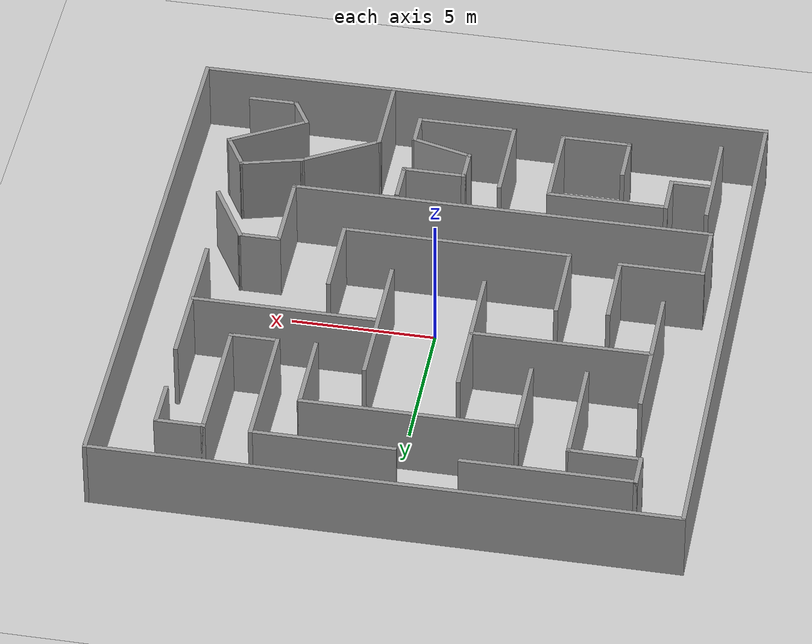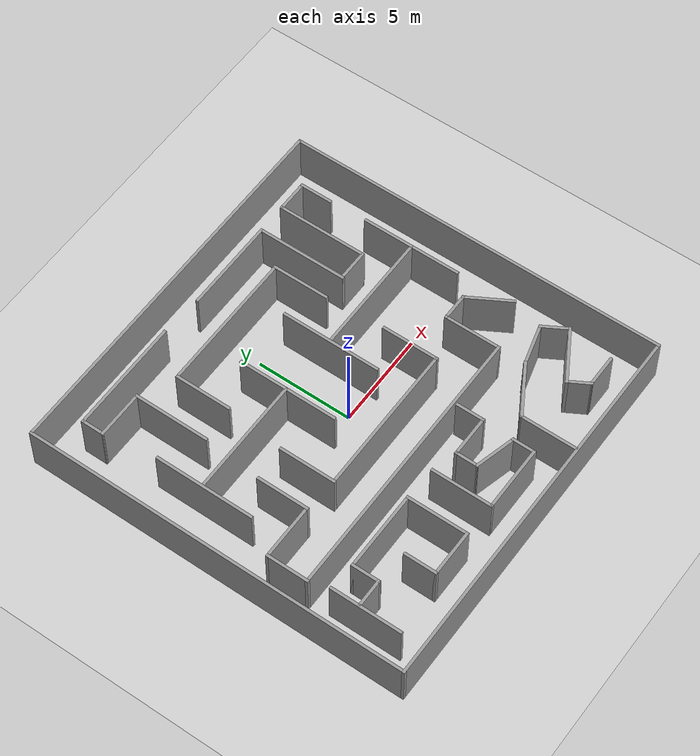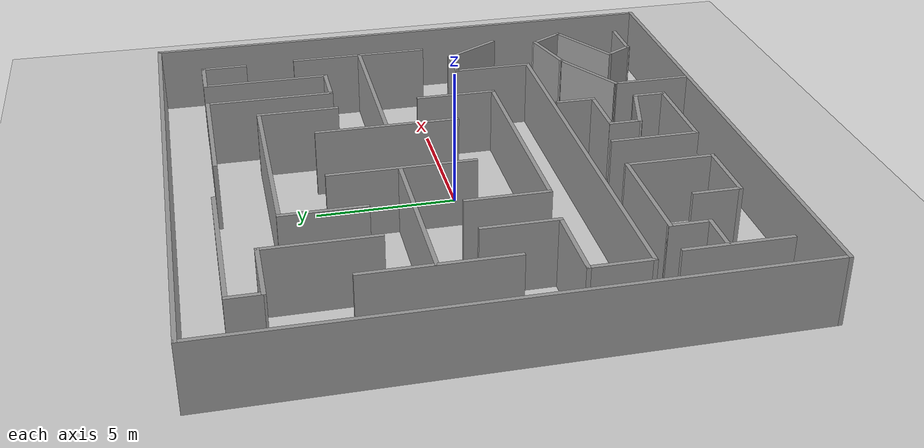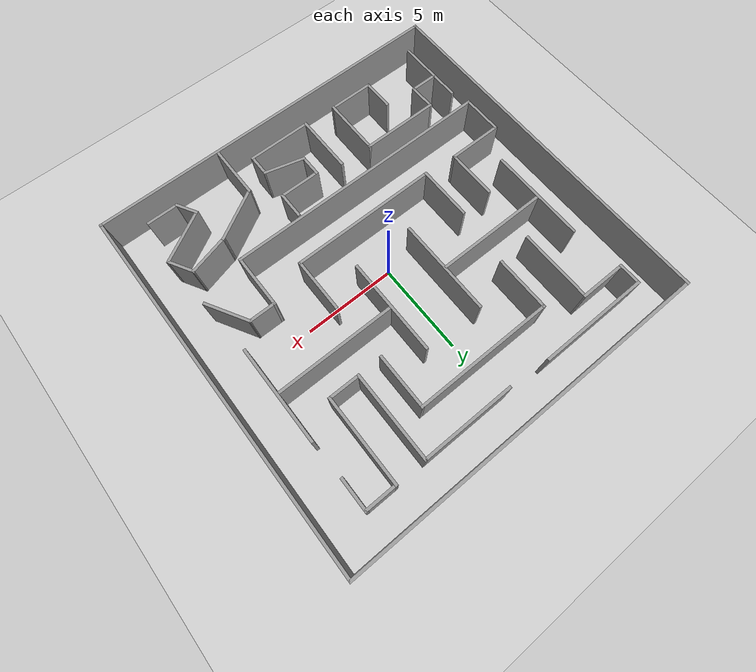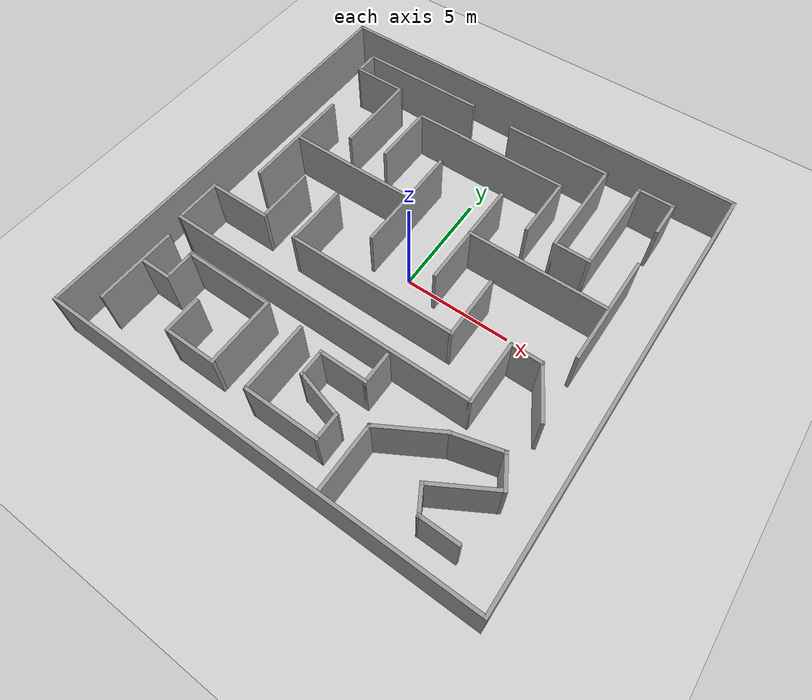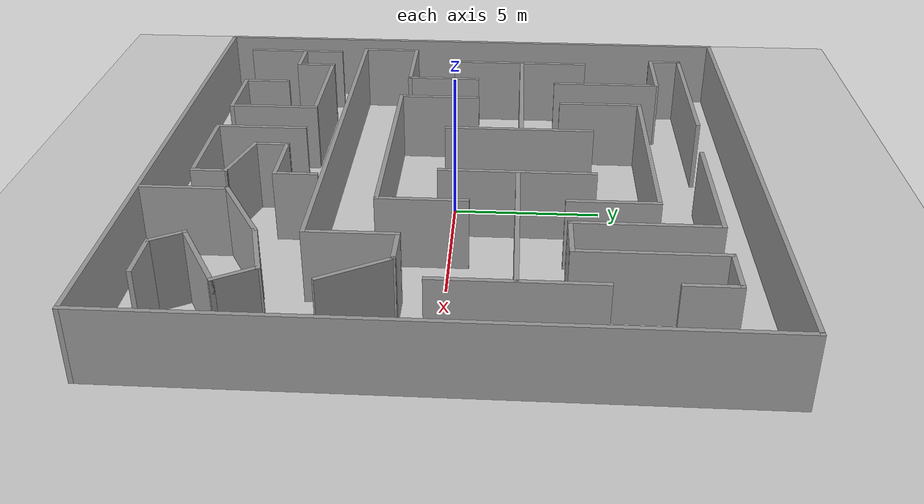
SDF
<sdf version="1.6">
 <world name="default">
  <light name="sun" type="directional">
   <pose>0 0 10 0 -0 0</pose>
   <diffuse>0.8 0.8 0.8 1</diffuse>
   <specular>0.1 0.1 0.1 1</specular>
   <attenuation>
    <range>1000</range>
    <constant>0.9</constant>
    <linear>0.01</linear>
    <quadratic>0.001</quadratic>
   </attenuation>
   <direction>-0.5 0.5 -1</direction>
  </light>
  <model name="ground_plane">
   <static>1</static>
   <link name="link">
    <collision name="collision">
     <geometry><plane><normal>0 0 1</normal><size>100 100</size></plane></geometry>
     <surface><friction><ode><mu>100</mu><mu2>50</mu2></ode></friction></surface>
    </collision>
    <visual name="visual">
     <cast_shadows>0</cast_shadows>
     <geometry><plane><normal>0 0 1</normal><size>100 100</size></plane></geometry>
     <material>
      <script><uri>file://media/materials/scripts/gazebo.material</uri><name>Gazebo/Grey</name></script>
     </material>
    </visual>
   </link>
  </model>
  <gravity>0 0 -9.8</gravity>
  <magnetic_field>6e-06 2.3e-05 -4.2e-05</magnetic_field>
  <atmosphere type="adiabatic"/>
  <physics name="default_physics" default="0" type="ode">
   <max_step_size>0.001</max_step_size>
   <real_time_factor>1</real_time_factor>
   <real_time_update_rate>1000</real_time_update_rate>
  </physics>
  <scene><ambient>0.4 0.4 0.4 1</ambient><background>0.7 0.7 0.7 1</background><shadows>1</shadows></scene>
  <spherical_coordinates>
   <surface_model>EARTH_WGS84</surface_model>
   <latitude_deg>0</latitude_deg>
   <longitude_deg>0</longitude_deg>
   <elevation>0</elevation>
   <heading_deg>0</heading_deg>
  </spherical_coordinates>
  <model name="pp_test_3">
   <link name="Wall_0">
    <collision name="Wall_0_Collision">
     <geometry><box><size>20.15 0.15 2.5</size></box></geometry>
     <pose>0 0 1.25 0 -0 0</pose>
    </collision>
    <visual name="Wall_0_Visual">
     <pose>0 0 1.25 0 -0 0</pose>
     <geometry><box><size>20.15 0.15 2.5</size></box></geometry>
     <material>
      <script><uri>file://media/materials/scripts/gazebo.material</uri><name>Gazebo/Grey</name></script>
      <ambient>1 1 1 1</ambient>
     </material>
    </visual>
    <pose>0 10 0 0 -0 0</pose>
   </link>
   <link name="Wall_10">
    <collision name="Wall_10_Collision">
     <geometry><box><size>6.25 0.15 2.5</size></box></geometry>
     <pose>0 0 1.25 0 -0 0</pose>
    </collision>
    <visual name="Wall_10_Visual">
     <pose>0 0 1.25 0 -0 0</pose>
     <geometry><box><size>6.25 0.15 2.5</size></box></geometry>
     <material>
      <script><uri>file://media/materials/scripts/gazebo.material</uri><name>Gazebo/Grey</name></script>
      <ambient>1 1 1 1</ambient>
     </material>
    </visual>
    <pose>-4.70173 2.24343 0 0 -0 0</pose>
   </link>
   <link name="Wall_12">
    <collision name="Wall_12_Collision">
     <geometry><box><size>5.25 0.15 2.5</size></box></geometry>
     <pose>0 0 1.25 0 -0 0</pose>
    </collision>
    <visual name="Wall_12_Visual">
     <pose>0 0 1.25 0 -0 0</pose>
     <geometry><box><size>5.25 0.15 2.5</size></box></geometry>
     <material>
      <script><uri>file://media/materials/scripts/gazebo.material</uri><name>Gazebo/Grey</name></script>
      <ambient>1 1 1 1</ambient>
     </material>
    </visual>
    <pose>-1.6184 2.16721 0 0 0 -1.5708</pose>
   </link>
   <link name="Wall_18">
    <collision name="Wall_18_Collision">
     <geometry><box><size>5.25 0.15 2.5</size></box></geometry>
     <pose>0 0 1.25 0 -0 0</pose>
    </collision>
    <visual name="Wall_18_Visual">
     <pose>0 0 1.25 0 -0 0</pose>
     <geometry><box><size>5.25 0.15 2.5</size></box></geometry>
     <material>
      <script><uri>file://media/materials/scripts/gazebo.material</uri><name>Gazebo/Grey</name></script>
      <ambient>1 1 1 1</ambient>
     </material>
    </visual>
    <pose>1.59138 2.12632 0 0 0 -1.5708</pose>
   </link>
   <link name="Wall_2">
    <collision name="Wall_2_Collision">
     <geometry><box><size>20.15 0.15 2.5</size></box></geometry>
     <pose>0 0 1.25 0 -0 0</pose>
    </collision>
    <visual name="Wall_2_Visual">
     <pose>0 0 1.25 0 -0 0</pose>
     <geometry><box><size>20.15 0.15 2.5</size></box></geometry>
     <material>
      <script><uri>file://media/materials/scripts/gazebo.material</uri><name>Gazebo/Grey</name></script>
      <ambient>1 1 1 1</ambient>
     </material>
    </visual>
    <pose>10 0 0 0 0 -1.5708</pose>
   </link>
   <link name="Wall_20">
    <collision name="Wall_20_Collision">
     <geometry><box><size>6.5 0.15 2.5</size></box></geometry>
     <pose>0 0 1.25 0 -0 0</pose>
    </collision>
    <visual name="Wall_20_Visual">
     <pose>0 0 1.25 0 -0 0</pose>
     <geometry><box><size>6.5 0.15 2.5</size></box></geometry>
     <material>
      <script><uri>file://media/materials/scripts/gazebo.material</uri><name>Gazebo/Grey</name></script>
      <ambient>1 1 1 1</ambient>
     </material>
    </visual>
    <pose>4.78682 2.16165 0 0 -0 0</pose>
   </link>
   <link name="Wall_25">
    <collision name="Wall_25_Collision">
     <geometry><box><size>5.25 0.15 2.5</size></box></geometry>
     <pose>0 0 1.25 0 -0 0</pose>
    </collision>
    <visual name="Wall_25_Visual">
     <pose>0 0 1.25 0 -0 0</pose>
     <geometry><box><size>5.25 0.15 2.5</size></box></geometry>
     <material>
      <script><uri>file://media/materials/scripts/gazebo.material</uri><name>Gazebo/Grey</name></script>
      <ambient>1 1 1 1</ambient>
     </material>
    </visual>
    <pose>8.03138 2.18765 0 0 0 -1.5708</pose>
   </link>
   <link name="Wall_34">
    <collision name="Wall_34_Collision">
     <geometry><box><size>3 0.15 2.5</size></box></geometry>
     <pose>0 0 1.25 0 -0 0</pose>
    </collision>
    <visual name="Wall_34_Visual">
     <pose>0 0 1.25 0 -0 0</pose>
     <geometry><box><size>3 0.15 2.5</size></box></geometry>
     <material>
      <script><uri>file://media/materials/scripts/gazebo.material</uri><name>Gazebo/Grey</name></script>
      <ambient>1 1 1 1</ambient>
     </material>
    </visual>
    <pose>-4.25573 -0.846902 0 0 0 -1.5708</pose>
   </link>
   <link name="Wall_35">
    <collision name="Wall_35_Collision">
     <geometry><box><size>8 0.15 2.5</size></box></geometry>
     <pose>0 0 1.25 0 -0 0</pose>
    </collision>
    <visual name="Wall_35_Visual">
     <pose>0 0 1.25 0 -0 0</pose>
     <geometry><box><size>8 0.15 2.5</size></box></geometry>
     <material>
      <script><uri>file://media/materials/scripts/gazebo.material</uri><name>Gazebo/Grey</name></script>
      <ambient>1 1 1 1</ambient>
     </material>
    </visual>
    <pose>-0.330733 -2.2719 0 0 -0 0</pose>
   </link>
   <link name="Wall_36">
    <collision name="Wall_36_Collision">
     <geometry><box><size>3 0.15 2.5</size></box></geometry>
     <pose>0 0 1.25 0 -0 0</pose>
    </collision>
    <visual name="Wall_36_Visual">
     <pose>0 0 1.25 0 -0 0</pose>
     <geometry><box><size>3 0.15 2.5</size></box></geometry>
     <material>
      <script><uri>file://media/materials/scripts/gazebo.material</uri><name>Gazebo/Grey</name></script>
      <ambient>1 1 1 1</ambient>
     </material>
    </visual>
    <pose>3.59427 -0.846902 0 0 -0 1.5708</pose>
   </link>
   <link name="Wall_38">
    <collision name="Wall_38_Collision">
     <geometry><box><size>3 0.15 2.5</size></box></geometry>
     <pose>0 0 1.25 0 -0 0</pose>
    </collision>
    <visual name="Wall_38_Visual">
     <pose>0 0 1.25 0 -0 0</pose>
     <geometry><box><size>3 0.15 2.5</size></box></geometry>
     <material>
      <script><uri>file://media/materials/scripts/gazebo.material</uri><name>Gazebo/Grey</name></script>
      <ambient>1 1 1 1</ambient>
     </material>
    </visual>
    <pose>-3.91751 5.14977 0 0 -0 1.5708</pose>
   </link>
   <link name="Wall_39">
    <collision name="Wall_39_Collision">
     <geometry><box><size>7.5 0.15 2.5</size></box></geometry>
     <pose>0 0 1.25 0 -0 0</pose>
    </collision>
    <visual name="Wall_39_Visual">
     <pose>0 0 1.25 0 -0 0</pose>
     <geometry><box><size>7.5 0.15 2.5</size></box></geometry>
     <material>
      <script><uri>file://media/materials/scripts/gazebo.material</uri><name>Gazebo/Grey</name></script>
      <ambient>1 1 1 1</ambient>
     </material>
    </visual>
    <pose>-0.242511 6.57477 0 0 -0 0</pose>
   </link>
   <link name="Wall_4">
    <collision name="Wall_4_Collision">
     <geometry><box><size>20.15 0.15 2.5</size></box></geometry>
     <pose>0 0 1.25 0 -0 0</pose>
    </collision>
    <visual name="Wall_4_Visual">
     <pose>0 0 1.25 0 -0 0</pose>
     <geometry><box><size>20.15 0.15 2.5</size></box></geometry>
     <material>
      <script><uri>file://media/materials/scripts/gazebo.material</uri><name>Gazebo/Grey</name></script>
      <ambient>1 1 1 1</ambient>
     </material>
    </visual>
    <pose>0 -10 0 0 -0 3.14159</pose>
   </link>
   <link name="Wall_40">
    <collision name="Wall_40_Collision">
     <geometry><box><size>3 0.15 2.5</size></box></geometry>
     <pose>0 0 1.25 0 -0 0</pose>
    </collision>
    <visual name="Wall_40_Visual">
     <pose>0 0 1.25 0 -0 0</pose>
     <geometry><box><size>3 0.15 2.5</size></box></geometry>
     <material>
      <script><uri>file://media/materials/scripts/gazebo.material</uri><name>Gazebo/Grey</name></script>
      <ambient>1 1 1 1</ambient>
     </material>
    </visual>
    <pose>3.43249 5.14977 0 0 0 -1.5708</pose>
   </link>
   <link name="Wall_42">
    <collision name="Wall_42_Collision">
     <geometry><box><size>4 0.15 2.5</size></box></geometry>
     <pose>0 0 1.25 0 -0 0</pose>
    </collision>
    <visual name="Wall_42_Visual">
     <pose>0 0 1.25 0 -0 0</pose>
     <geometry><box><size>4 0.15 2.5</size></box></geometry>
     <material>
      <script><uri>file://media/materials/scripts/gazebo.material</uri><name>Gazebo/Grey</name></script>
      <ambient>1 1 1 1</ambient>
     </material>
    </visual>
    <pose>-5.77801 5.49041 0 0 -0 1.5708</pose>
   </link>
   <link name="Wall_43">
    <collision name="Wall_43_Collision">
     <geometry><box><size>2.57178 0.15 2.5</size></box></geometry>
     <pose>0 0 1.25 0 -0 0</pose>
    </collision>
    <visual name="Wall_43_Visual">
     <pose>0 0 1.25 0 -0 0</pose>
     <geometry><box><size>2.57178 0.15 2.5</size></box></geometry>
     <material>
      <script><uri>file://media/materials/scripts/gazebo.material</uri><name>Gazebo/Grey</name></script>
      <ambient>1 1 1 1</ambient>
     </material>
    </visual>
    <pose>-6.98889 7.41967 0 0 -0 3.13808</pose>
   </link>
   <link name="Wall_44">
    <collision name="Wall_44_Collision">
     <geometry><box><size>1.25 0.15 2.5</size></box></geometry>
     <pose>0 0 1.25 0 -0 0</pose>
    </collision>
    <visual name="Wall_44_Visual">
     <pose>0 0 1.25 0 -0 0</pose>
     <geometry><box><size>1.25 0.15 2.5</size></box></geometry>
     <material>
      <script><uri>file://media/materials/scripts/gazebo.material</uri><name>Gazebo/Grey</name></script>
      <ambient>1 1 1 1</ambient>
     </material>
    </visual>
    <pose>-8.19977 7.97393 0 0 -0 1.5708</pose>
   </link>
   <link name="Wall_46">
    <collision name="Wall_46_Collision">
     <geometry><box><size>5 0.15 2.5</size></box></geometry>
     <pose>0 0 1.25 0 -0 0</pose>
    </collision>
    <visual name="Wall_46_Visual">
     <pose>0 0 1.25 0 -0 0</pose>
     <geometry><box><size>5 0.15 2.5</size></box></geometry>
     <material>
      <script><uri>file://media/materials/scripts/gazebo.material</uri><name>Gazebo/Grey</name></script>
      <ambient>1 1 1 1</ambient>
     </material>
    </visual>
    <pose>2.31975 8.35096 0 0 -0 0</pose>
   </link>
   <link name="Wall_47">
    <collision name="Wall_47_Collision">
     <geometry><box><size>4.75 0.15 2.5</size></box></geometry>
     <pose>0 0 1.25 0 -0 0</pose>
    </collision>
    <visual name="Wall_47_Visual">
     <pose>0 0 1.25 0 -0 0</pose>
     <geometry><box><size>4.75 0.15 2.5</size></box></geometry>
     <material>
      <script><uri>file://media/materials/scripts/gazebo.material</uri><name>Gazebo/Grey</name></script>
      <ambient>1 1 1 1</ambient>
     </material>
    </visual>
    <pose>4.74475 6.05096 0 0 0 -1.5708</pose>
   </link>
   <link name="Wall_48">
    <collision name="Wall_48_Collision">
     <geometry><box><size>1.75 0.15 2.5</size></box></geometry>
     <pose>0 0 1.25 0 -0 0</pose>
    </collision>
    <visual name="Wall_48_Visual">
     <pose>0 0 1.25 0 -0 0</pose>
     <geometry><box><size>1.75 0.15 2.5</size></box></geometry>
     <material>
      <script><uri>file://media/materials/scripts/gazebo.material</uri><name>Gazebo/Grey</name></script>
      <ambient>1 1 1 1</ambient>
     </material>
    </visual>
    <pose>5.54475 3.75096 0 0 -0 0</pose>
   </link>
   <link name="Wall_49">
    <collision name="Wall_49_Collision">
     <geometry><box><size>4.75 0.15 2.5</size></box></geometry>
     <pose>0 0 1.25 0 -0 0</pose>
    </collision>
    <visual name="Wall_49_Visual">
     <pose>0 0 1.25 0 -0 0</pose>
     <geometry><box><size>4.75 0.15 2.5</size></box></geometry>
     <material>
      <script><uri>file://media/materials/scripts/gazebo.material</uri><name>Gazebo/Grey</name></script>
      <ambient>1 1 1 1</ambient>
     </material>
    </visual>
    <pose>6.34475 6.05096 0 0 -0 1.5708</pose>
   </link>
   <link name="Wall_50">
    <collision name="Wall_50_Collision">
     <geometry><box><size>1.75 0.15 2.5</size></box></geometry>
     <pose>0 0 1.25 0 -0 0</pose>
    </collision>
    <visual name="Wall_50_Visual">
     <pose>0 0 1.25 0 -0 0</pose>
     <geometry><box><size>1.75 0.15 2.5</size></box></geometry>
     <material>
      <script><uri>file://media/materials/scripts/gazebo.material</uri><name>Gazebo/Grey</name></script>
      <ambient>1 1 1 1</ambient>
     </material>
    </visual>
    <pose>7.14475 8.35096 0 0 -0 0</pose>
   </link>
   <link name="Wall_51">
    <collision name="Wall_51_Collision">
     <geometry><box><size>1.75 0.15 2.5</size></box></geometry>
     <pose>0 0 1.25 0 -0 0</pose>
    </collision>
    <visual name="Wall_51_Visual">
     <pose>0 0 1.25 0 -0 0</pose>
     <geometry><box><size>1.75 0.15 2.5</size></box></geometry>
     <material>
      <script><uri>file://media/materials/scripts/gazebo.material</uri><name>Gazebo/Grey</name></script>
      <ambient>1 1 1 1</ambient>
     </material>
    </visual>
    <pose>7.94475 7.55096 0 0 0 -1.5708</pose>
   </link>
   <link name="Wall_53">
    <collision name="Wall_53_Collision">
     <geometry><box><size>6 0.15 2.5</size></box></geometry>
     <pose>0 0 1.25 0 -0 0</pose>
    </collision>
    <visual name="Wall_53_Visual">
     <pose>0 0 1.25 0 -0 0</pose>
     <geometry><box><size>6 0.15 2.5</size></box></geometry>
     <material>
      <script><uri>file://media/materials/scripts/gazebo.material</uri><name>Gazebo/Grey</name></script>
      <ambient>1 1 1 1</ambient>
     </material>
    </visual>
    <pose>-5.27477 8.52393 0 0 -0 0</pose>
   </link>
   <link name="Wall_55">
    <collision name="Wall_55_Collision">
     <geometry><box><size>2.75 0.15 2.5</size></box></geometry>
     <pose>0 0 1.25 0 -0 0</pose>
    </collision>
    <visual name="Wall_55_Visual">
     <pose>0 0 1.25 0 -0 0</pose>
     <geometry><box><size>2.75 0.15 2.5</size></box></geometry>
     <material>
      <script><uri>file://media/materials/scripts/gazebo.material</uri><name>Gazebo/Grey</name></script>
      <ambient>1 1 1 1</ambient>
     </material>
    </visual>
    <pose>-6.03341 -0.812933 0 0 0 -1.5708</pose>
   </link>
   <link name="Wall_56">
    <collision name="Wall_56_Collision">
     <geometry><box><size>3 0.15 2.5</size></box></geometry>
     <pose>0 0 1.25 0 -0 0</pose>
    </collision>
    <visual name="Wall_56_Visual">
     <pose>0 0 1.25 0 -0 0</pose>
     <geometry><box><size>3 0.15 2.5</size></box></geometry>
     <material>
      <script><uri>file://media/materials/scripts/gazebo.material</uri><name>Gazebo/Grey</name></script>
      <ambient>1 1 1 1</ambient>
     </material>
    </visual>
    <pose>-7.45841 -2.11293 0 0 -0 3.14159</pose>
   </link>
   <link name="Wall_57">
    <collision name="Wall_57_Collision">
     <geometry><box><size>2.25 0.15 2.5</size></box></geometry>
     <pose>0 0 1.25 0 -0 0</pose>
    </collision>
    <visual name="Wall_57_Visual">
     <pose>0 0 1.25 0 -0 0</pose>
     <geometry><box><size>2.25 0.15 2.5</size></box></geometry>
     <material>
      <script><uri>file://media/materials/scripts/gazebo.material</uri><name>Gazebo/Grey</name></script>
      <ambient>1 1 1 1</ambient>
     </material>
    </visual>
    <pose>-8.88341 -3.16293 0 0 0 -1.5708</pose>
   </link>
   <link name="Wall_58">
    <collision name="Wall_58_Collision">
     <geometry><box><size>14.75 0.15 2.5</size></box></geometry>
     <pose>0 0 1.25 0 -0 0</pose>
    </collision>
    <visual name="Wall_58_Visual">
     <pose>0 0 1.25 0 -0 0</pose>
     <geometry><box><size>14.75 0.15 2.5</size></box></geometry>
     <material>
      <script><uri>file://media/materials/scripts/gazebo.material</uri><name>Gazebo/Grey</name></script>
      <ambient>1 1 1 1</ambient>
     </material>
    </visual>
    <pose>-1.58342 -4.21293 0 0 -0 0</pose>
   </link>
   <link name="Wall_59">
    <collision name="Wall_59_Collision">
     <geometry><box><size>3 0.15 2.5</size></box></geometry>
     <pose>0 0 1.25 0 -0 0</pose>
    </collision>
    <visual name="Wall_59_Visual">
     <pose>0 0 1.25 0 -0 0</pose>
     <geometry><box><size>3 0.15 2.5</size></box></geometry>
     <material>
      <script><uri>file://media/materials/scripts/gazebo.material</uri><name>Gazebo/Grey</name></script>
      <ambient>1 1 1 1</ambient>
     </material>
    </visual>
    <pose>5.71659 -2.78793 0 0 -0 1.5708</pose>
   </link>
   <link name="Wall_6">
    <collision name="Wall_6_Collision">
     <geometry><box><size>20.15 0.15 2.5</size></box></geometry>
     <pose>0 0 1.25 0 -0 0</pose>
    </collision>
    <visual name="Wall_6_Visual">
     <pose>0 0 1.25 0 -0 0</pose>
     <geometry><box><size>20.15 0.15 2.5</size></box></geometry>
     <material>
      <script><uri>file://media/materials/scripts/gazebo.material</uri><name>Gazebo/Grey</name></script>
      <ambient>1 1 1 1</ambient>
     </material>
    </visual>
    <pose>-10 0 0 0 -0 1.5708</pose>
   </link>
   <link name="Wall_60">
    <collision name="Wall_60_Collision">
     <geometry><box><size>1.5 0.15 2.5</size></box></geometry>
     <pose>0 0 1.25 0 -0 0</pose>
    </collision>
    <visual name="Wall_60_Visual">
     <pose>0 0 1.25 0 -0 0</pose>
     <geometry><box><size>1.5 0.15 2.5</size></box></geometry>
     <material>
      <script><uri>file://media/materials/scripts/gazebo.material</uri><name>Gazebo/Grey</name></script>
      <ambient>1 1 1 1</ambient>
     </material>
    </visual>
    <pose>6.39159 -1.36293 0 0 -0 0</pose>
   </link>
   <link name="Wall_61">
    <collision name="Wall_61_Collision">
     <geometry><box><size>2.5 0.15 2.5</size></box></geometry>
     <pose>0 0 1.25 0 -0 0</pose>
    </collision>
    <visual name="Wall_61_Visual">
     <pose>0 0 1.25 0 -0 0</pose>
     <geometry><box><size>2.5 0.15 2.5</size></box></geometry>
     <material>
      <script><uri>file://media/materials/scripts/gazebo.material</uri><name>Gazebo/Grey</name></script>
      <ambient>1 1 1 1</ambient>
     </material>
    </visual>
    <pose>7.65409 -2.38051 0 0 0 -1.0472</pose>
   </link>
   <link name="Wall_63">
    <collision name="Wall_63_Collision">
     <geometry><box><size>3.75 0.15 2.5</size></box></geometry>
     <pose>0 0 1.25 0 -0 0</pose>
    </collision>
    <visual name="Wall_63_Visual">
     <pose>0 0 1.25 0 -0 0</pose>
     <geometry><box><size>3.75 0.15 2.5</size></box></geometry>
     <material>
      <script><uri>file://media/materials/scripts/gazebo.material</uri><name>Gazebo/Grey</name></script>
      <ambient>1 1 1 1</ambient>
     </material>
    </visual>
    <pose>-8.57406 -7.03946 0 0 0 -1.5708</pose>
   </link>
   <link name="Wall_65">
    <collision name="Wall_65_Collision">
     <geometry><box><size>1.5 0.15 2.5</size></box></geometry>
     <pose>0 0 1.25 0 -0 0</pose>
    </collision>
    <visual name="Wall_65_Visual">
     <pose>0 0 1.25 0 -0 0</pose>
     <geometry><box><size>1.5 0.15 2.5</size></box></geometry>
     <material>
      <script><uri>file://media/materials/scripts/gazebo.material</uri><name>Gazebo/Grey</name></script>
      <ambient>1 1 1 1</ambient>
     </material>
    </visual>
    <pose>-7.8184 -6.69126 0 0 -0 0</pose>
   </link>
   <link name="Wall_66">
    <collision name="Wall_66_Collision">
     <geometry><box><size>1.5 0.15 2.5</size></box></geometry>
     <pose>0 0 1.25 0 -0 0</pose>
    </collision>
    <visual name="Wall_66_Visual">
     <pose>0 0 1.25 0 -0 0</pose>
     <geometry><box><size>1.5 0.15 2.5</size></box></geometry>
     <material>
      <script><uri>file://media/materials/scripts/gazebo.material</uri><name>Gazebo/Grey</name></script>
      <ambient>1 1 1 1</ambient>
     </material>
    </visual>
    <pose>-7.1434 -6.01626 0 0 -0 1.5708</pose>
   </link>
   <link name="Wall_67">
    <collision name="Wall_67_Collision">
     <geometry><box><size>4.25 0.15 2.5</size></box></geometry>
     <pose>0 0 1.25 0 -0 0</pose>
    </collision>
    <visual name="Wall_67_Visual">
     <pose>0 0 1.25 0 -0 0</pose>
     <geometry><box><size>4.25 0.15 2.5</size></box></geometry>
     <material>
      <script><uri>file://media/materials/scripts/gazebo.material</uri><name>Gazebo/Grey</name></script>
      <ambient>1 1 1 1</ambient>
     </material>
    </visual>
    <pose>-5.0934 -5.34126 0 0 -0 0</pose>
   </link>
   <link name="Wall_68">
    <collision name="Wall_68_Collision">
     <geometry><box><size>3.25 0.15 2.5</size></box></geometry>
     <pose>0 0 1.25 0 -0 0</pose>
    </collision>
    <visual name="Wall_68_Visual">
     <pose>0 0 1.25 0 -0 0</pose>
     <geometry><box><size>3.25 0.15 2.5</size></box></geometry>
     <material>
      <script><uri>file://media/materials/scripts/gazebo.material</uri><name>Gazebo/Grey</name></script>
      <ambient>1 1 1 1</ambient>
     </material>
    </visual>
    <pose>-3.0434 -6.89126 0 0 0 -1.5708</pose>
   </link>
   <link name="Wall_69">
    <collision name="Wall_69_Collision">
     <geometry><box><size>2.5 0.15 2.5</size></box></geometry>
     <pose>0 0 1.25 0 -0 0</pose>
    </collision>
    <visual name="Wall_69_Visual">
     <pose>0 0 1.25 0 -0 0</pose>
     <geometry><box><size>2.5 0.15 2.5</size></box></geometry>
     <material>
      <script><uri>file://media/materials/scripts/gazebo.material</uri><name>Gazebo/Grey</name></script>
      <ambient>1 1 1 1</ambient>
     </material>
    </visual>
    <pose>-4.2184 -8.44126 0 0 -0 3.14159</pose>
   </link>
   <link name="Wall_70">
    <collision name="Wall_70_Collision">
     <geometry><box><size>1.75 0.15 2.5</size></box></geometry>
     <pose>0 0 1.25 0 -0 0</pose>
    </collision>
    <visual name="Wall_70_Visual">
     <pose>0 0 1.25 0 -0 0</pose>
     <geometry><box><size>1.75 0.15 2.5</size></box></geometry>
     <material>
      <script><uri>file://media/materials/scripts/gazebo.material</uri><name>Gazebo/Grey</name></script>
      <ambient>1 1 1 1</ambient>
     </material>
    </visual>
    <pose>-5.3934 -7.64126 0 0 -0 1.5708</pose>
   </link>
   <link name="Wall_72">
    <collision name="Wall_72_Collision">
     <geometry><box><size>3.25 0.15 2.5</size></box></geometry>
     <pose>0 0 1.25 0 -0 0</pose>
    </collision>
    <visual name="Wall_72_Visual">
     <pose>0 0 1.25 0 -0 0</pose>
     <geometry><box><size>3.25 0.15 2.5</size></box></geometry>
     <material>
      <script><uri>file://media/materials/scripts/gazebo.material</uri><name>Gazebo/Grey</name></script>
      <ambient>1 1 1 1</ambient>
     </material>
    </visual>
    <pose>-1.28819 -6.97766 0 0 0 -1.5708</pose>
   </link>
   <link name="Wall_73">
    <collision name="Wall_73_Collision">
     <geometry><box><size>3.5 0.15 2.5</size></box></geometry>
     <pose>0 0 1.25 0 -0 0</pose>
    </collision>
    <visual name="Wall_73_Visual">
     <pose>0 0 1.25 0 -0 0</pose>
     <geometry><box><size>3.5 0.15 2.5</size></box></geometry>
     <material>
      <script><uri>file://media/materials/scripts/gazebo.material</uri><name>Gazebo/Grey</name></script>
      <ambient>1 1 1 1</ambient>
     </material>
    </visual>
    <pose>0.386807 -8.52766 0 0 -0 0</pose>
   </link>
   <link name="Wall_74">
    <collision name="Wall_74_Collision">
     <geometry><box><size>1.25 0.15 2.5</size></box></geometry>
     <pose>0 0 1.25 0 -0 0</pose>
    </collision>
    <visual name="Wall_74_Visual">
     <pose>0 0 1.25 0 -0 0</pose>
     <geometry><box><size>1.25 0.15 2.5</size></box></geometry>
     <material>
      <script><uri>file://media/materials/scripts/gazebo.material</uri><name>Gazebo/Grey</name></script>
      <ambient>1 1 1 1</ambient>
     </material>
    </visual>
    <pose>2.06181 -7.97766 0 0 -0 1.5708</pose>
   </link>
   <link name="Wall_75">
    <collision name="Wall_75_Collision">
     <geometry><box><size>2.25 0.15 2.5</size></box></geometry>
     <pose>0 0 1.25 0 -0 0</pose>
    </collision>
    <visual name="Wall_75_Visual">
     <pose>0 0 1.25 0 -0 0</pose>
     <geometry><box><size>2.25 0.15 2.5</size></box></geometry>
     <material>
      <script><uri>file://media/materials/scripts/gazebo.material</uri><name>Gazebo/Grey</name></script>
      <ambient>1 1 1 1</ambient>
     </material>
    </visual>
    <pose>1.04758 -7.1559 0 0 -0 2.87979</pose>
   </link>
   <link name="Wall_76">
    <collision name="Wall_76_Collision">
     <geometry><box><size>1.25 0.15 2.5</size></box></geometry>
     <pose>0 0 1.25 0 -0 0</pose>
    </collision>
    <visual name="Wall_76_Visual">
     <pose>0 0 1.25 0 -0 0</pose>
     <geometry><box><size>1.25 0.15 2.5</size></box></geometry>
     <material>
      <script><uri>file://media/materials/scripts/gazebo.material</uri><name>Gazebo/Grey</name></script>
      <ambient>1 1 1 1</ambient>
     </material>
    </visual>
    <pose>0.033363 -6.33414 0 0 -0 1.5708</pose>
   </link>
   <link name="Wall_79">
    <collision name="Wall_79_Collision">
     <geometry><box><size>2.25 0.15 2.5</size></box></geometry>
     <pose>0 0 1.25 0 -0 0</pose>
    </collision>
    <visual name="Wall_79_Visual">
     <pose>0 0 1.25 0 -0 0</pose>
     <geometry><box><size>2.25 0.15 2.5</size></box></geometry>
     <material>
      <script><uri>file://media/materials/scripts/gazebo.material</uri><name>Gazebo/Grey</name></script>
      <ambient>1 1 1 1</ambient>
     </material>
    </visual>
    <pose>1.08336 -5.78414 0 0 -0 0</pose>
   </link>
   <link name="Wall_8">
    <collision name="Wall_8_Collision">
     <geometry><box><size>5.25 0.15 2.5</size></box></geometry>
     <pose>0 0 1.25 0 -0 0</pose>
    </collision>
    <visual name="Wall_8_Visual">
     <pose>0 0 1.25 0 -0 0</pose>
     <geometry><box><size>5.25 0.15 2.5</size></box></geometry>
     <material>
      <script><uri>file://media/materials/scripts/gazebo.material</uri><name>Gazebo/Grey</name></script>
      <ambient>1 1 1 1</ambient>
     </material>
    </visual>
    <pose>-7.77218 2.14676 0 0 0 -1.5708</pose>
   </link>
   <link name="Wall_80">
    <collision name="Wall_80_Collision">
     <geometry><box><size>1.5 0.15 2.5</size></box></geometry>
     <pose>0 0 1.25 0 -0 0</pose>
    </collision>
    <visual name="Wall_80_Visual">
     <pose>0 0 1.25 0 -0 0</pose>
     <geometry><box><size>1.5 0.15 2.5</size></box></geometry>
     <material>
      <script><uri>file://media/materials/scripts/gazebo.material</uri><name>Gazebo/Grey</name></script>
      <ambient>1 1 1 1</ambient>
     </material>
    </visual>
    <pose>2.13336 -5.10914 0 0 -0 1.5708</pose>
   </link>
   <link name="Wall_82">
    <collision name="Wall_82_Collision">
     <geometry><box><size>3 0.15 2.5</size></box></geometry>
     <pose>0 0 1.25 0 -0 0</pose>
    </collision>
    <visual name="Wall_82_Visual">
     <pose>0 0 1.25 0 -0 0</pose>
     <geometry><box><size>3 0.15 2.5</size></box></geometry>
     <material>
      <script><uri>file://media/materials/scripts/gazebo.material</uri><name>Gazebo/Grey</name></script>
      <ambient>1 1 1 1</ambient>
     </material>
    </visual>
    <pose>3.26883 -8.49247 0 0 -0 1.5708</pose>
   </link>
   <link name="Wall_83">
    <collision name="Wall_83_Collision">
     <geometry><box><size>3 0.15 2.5</size></box></geometry>
     <pose>0 0 1.25 0 -0 0</pose>
    </collision>
    <visual name="Wall_83_Visual">
     <pose>0 0 1.25 0 -0 0</pose>
     <geometry><box><size>3 0.15 2.5</size></box></geometry>
     <material>
      <script><uri>file://media/materials/scripts/gazebo.material</uri><name>Gazebo/Grey</name></script>
      <ambient>1 1 1 1</ambient>
     </material>
    </visual>
    <pose>4.50292 -6.35497 0 0 -0 0.523599</pose>
   </link>
   <link name="Wall_84">
    <collision name="Wall_84_Collision">
     <geometry><box><size>2.25 0.15 2.5</size></box></geometry>
     <pose>0 0 1.25 0 -0 0</pose>
    </collision>
    <visual name="Wall_84_Visual">
     <pose>0 0 1.25 0 -0 0</pose>
     <geometry><box><size>2.25 0.15 2.5</size></box></geometry>
     <material>
      <script><uri>file://media/materials/scripts/gazebo.material</uri><name>Gazebo/Grey</name></script>
      <ambient>1 1 1 1</ambient>
     </material>
    </visual>
    <pose>6.75123 -5.37071 0 0 -0 0.261799</pose>
   </link>
   <link name="Wall_85">
    <collision name="Wall_85_Collision">
     <geometry><box><size>1.5 0.15 2.5</size></box></geometry>
     <pose>0 0 1.25 0 -0 0</pose>
    </collision>
    <visual name="Wall_85_Visual">
     <pose>0 0 1.25 0 -0 0</pose>
     <geometry><box><size>1.5 0.15 2.5</size></box></geometry>
     <material>
      <script><uri>file://media/materials/scripts/gazebo.material</uri><name>Gazebo/Grey</name></script>
      <ambient>1 1 1 1</ambient>
     </material>
    </visual>
    <pose>8.10295 -5.68352 0 0 0 -1.0472</pose>
   </link>
   <link name="Wall_86">
    <collision name="Wall_86_Collision">
     <geometry><box><size>3 0.15 2.5</size></box></geometry>
     <pose>0 0 1.25 0 -0 0</pose>
    </collision>
    <visual name="Wall_86_Visual">
     <pose>0 0 1.25 0 -0 0</pose>
     <geometry><box><size>3 0.15 2.5</size></box></geometry>
     <material>
      <script><uri>file://media/materials/scripts/gazebo.material</uri><name>Gazebo/Grey</name></script>
      <ambient>1 1 1 1</ambient>
     </material>
    </visual>
    <pose>7.20636 -6.98058 0 0 0 -2.61799</pose>
   </link>
   <link name="Wall_87">
    <collision name="Wall_87_Collision">
     <geometry><box><size>1.25 0.15 2.5</size></box></geometry>
     <pose>0 0 1.25 0 -0 0</pose>
    </collision>
    <visual name="Wall_87_Visual">
     <pose>0 0 1.25 0 -0 0</pose>
     <geometry><box><size>1.25 0.15 2.5</size></box></geometry>
     <material>
      <script><uri>file://media/materials/scripts/gazebo.material</uri><name>Gazebo/Grey</name></script>
      <ambient>1 1 1 1</ambient>
     </material>
    </visual>
    <pose>6.24728 -8.1694 0 0 0 -1.0472</pose>
   </link>
   <link name="Wall_88">
    <collision name="Wall_88_Collision">
     <geometry><box><size>1.75 0.15 2.5</size></box></geometry>
     <pose>0 0 1.25 0 -0 0</pose>
    </collision>
    <visual name="Wall_88_Visual">
     <pose>0 0 1.25 0 -0 0</pose>
     <geometry><box><size>1.75 0.15 2.5</size></box></geometry>
     <material>
      <script><uri>file://media/materials/scripts/gazebo.material</uri><name>Gazebo/Grey</name></script>
      <ambient>1 1 1 1</ambient>
     </material>
    </visual>
    <pose>7.32228 -8.64571 0 0 -0 0</pose>
   </link>
   <static>1</static>
  </model>
 </world>
</sdf>
